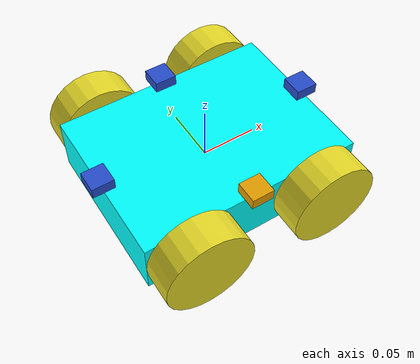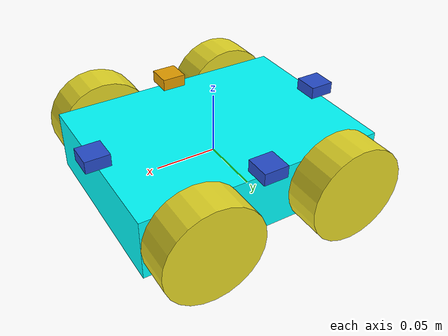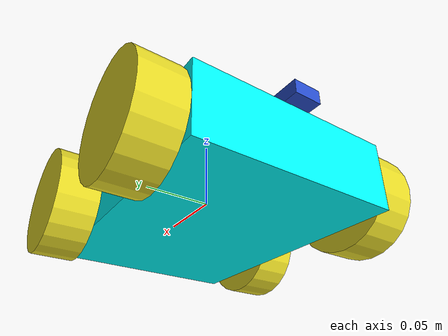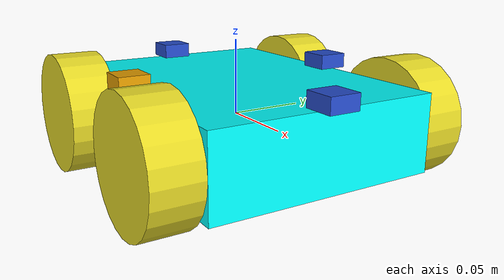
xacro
<?xml version='1.0'?>

<robot name="robot" xmlns:xacro="http://www.ros.org/wiki/xacro">

  <xacro:property name="camera_width" value="0.02"/>
  <xacro:property name="camera_length" value="0.02"/>
  <xacro:property name="camera_height" value="0.01"/>
  <xacro:property name="camera_mass" value="0.01"/>
  <xacro:property name="chassis_width" value="0.15"/>
  <xacro:property name="chassis_length" value="0.2"/>
  <xacro:property name="chassis_height" value="0.05"/>
  <xacro:property name="chassis_mass" value="0.5"/>
  <xacro:property name="wheel_radius" value="0.04"/>
  <xacro:property name="wheel_width" value="0.03"/>
  <xacro:property name="wheel_mass" value="0.025"/>

  <xacro:include filename="$(find robbie)/urdf/macros.xacro"/>
  <xacro:include filename="$(find robbie)/urdf/materials.xacro"/>

  <link name='chassis'>
    <xacro:box_inertial name="chassis" m="${chassis_mass}" x="${chassis_length}" y="${chassis_width}" z="${chassis_height}"/>
    <collision name='chassis_collision'>
      <geometry>
        <box size="${chassis_length} ${chassis_width} ${chassis_height}"/>
      </geometry>
    </collision>
    <visual name='chassis_visual'>
      <origin xyz="0 0 0" rpy=" 0 0 0"/>
      <geometry>
        <box size="${chassis_length} ${chassis_width} ${chassis_height}"/>
      </geometry>
      <material name="Cyan">
        <color rgba="0 1.0 1.0 1.0"/>
      </material>
    </visual>
  </link>

  <link name='wheel_FR'>
    <xacro:cylinder_inertial name="wheel_FR" m="${wheel_mass}" r="${wheel_radius}" h="${wheel_width}"/>
    <collision name='wheel_FR_collision'>
      <origin xyz="0 0 0" rpy="1.5708 0 0"/>
      <geometry>
        <cylinder radius="${wheel_radius}" length="${wheel_width}"/>
      </geometry>
    </collision>
    <visual name='wheel_FR_visual'>
      <origin xyz="0 0 0" rpy="1.5708 0 0"/>
      <geometry>
        <cylinder radius="${wheel_radius}" length="${wheel_width}"/>
      </geometry>
    </visual>
  </link>

  <link name='wheel_FL'>
    <xacro:cylinder_inertial name="wheel_FL" m="${wheel_mass}" r="${wheel_radius}" h="${wheel_width}"/>
    <collision name='wheel_FL_collision'>
      <origin xyz="0 0 0" rpy="1.5708 0 0"/>
      <geometry>
        <cylinder radius="${wheel_radius}" length="${wheel_width}"/>
      </geometry>
    </collision>
    <visual name='wheel_FL_visual'>
      <origin xyz="0 0 0" rpy="1.5708 0 0"/>
      <geometry>
        <cylinder radius="${wheel_radius}" length="${wheel_width}"/>
      </geometry>
    </visual>
  </link>

  <link name='wheel_RR'>
    <xacro:cylinder_inertial name="wheel_RR" m="${wheel_mass}" r="${wheel_radius}" h="${wheel_width}"/>
    <collision name='wheel_RR_collision'>
      <origin xyz="0 0 0" rpy="1.5708 0 0"/>
      <geometry>
        <cylinder radius="${wheel_radius}" length="${wheel_width}"/>
      </geometry>
    </collision>
    <visual name='wheel_RR_visual'>
      <origin xyz="0 0 0" rpy="1.5708 0 0"/>
      <geometry>
        <cylinder radius="${wheel_radius}" length="${wheel_width}"/>
      </geometry>
    </visual>
  </link>

  <link name='wheel_RL'>
    <xacro:cylinder_inertial name="wheel_RL" m="${wheel_mass}" r="${wheel_radius}" h="${wheel_width}"/>
    <collision name='wheel_RL_collision'>
      <origin xyz="0 0 0" rpy="1.5708 0 0"/>
      <geometry>
        <cylinder radius="${wheel_radius}" length="${wheel_width}"/>
      </geometry>
    </collision>
    <visual name='wheel_RL_visual'>
      <origin xyz="0 0 0" rpy="1.5708 0 0"/>
      <geometry>
        <cylinder radius="${wheel_radius}" length="${wheel_width}"/>
      </geometry>
    </visual>
  </link>

  <link name='camera_front_link'>
    <xacro:box_inertial name="camera_link_front" m="${camera_mass}" x="${camera_width}" y="${camera_length}" z="${camera_height}"/>
    <collision name='camera_link_front__collision'>
      <geometry>
        <box size="${camera_length} ${camera_width} ${camera_height}"/>
      </geometry>
    </collision>
    <visual name='camera_link_front_visual'>
      <origin xyz="0 0 0" rpy=" 0 0 0"/>
      <geometry>
        <box size="${camera_length} ${camera_width} ${camera_height}"/>
      </geometry>
    </visual>
  </link>

  <link name='camera_rear_link'>
    <xacro:box_inertial name="camera_link_rear" m="${camera_mass}" x="${camera_width}" y="${camera_length}" z="${camera_height}"/>
    <collision name='camera_link_rear_collision'>
      <geometry>
        <box size="${camera_length} ${camera_width} ${camera_height}"/>
      </geometry>
    </collision>
    <visual name='camera_link_rear_visual'>
      <origin xyz="0 0 0" rpy=" 0 0 0"/>
      <geometry>
        <box size="${camera_length} ${camera_width} ${camera_height}"/>
      </geometry>
    </visual>
  </link>

  <link name='camera_left_link'>
    <xacro:box_inertial name="camera_link_left" m="${camera_mass}" x="${camera_width}" y="${camera_length}" z="${camera_height}"/>
    <collision name='camera_link_left_collision'>
      <geometry>
        <box size="${camera_length} ${camera_width} ${camera_height}"/>
      </geometry>
    </collision>
    <visual name='camera_link_left_visual'>
      <origin xyz="0 0 0" rpy=" 0 0 0"/>
      <geometry>
        <box size="${camera_length} ${camera_width} ${camera_height}"/>
      </geometry>
    </visual>
  </link>

  <link name='camera_right_link'>
    <xacro:box_inertial name="camera_link_right" m="${camera_mass}" x="${camera_width}" y="${camera_length}" z="${camera_height}"/>
    <collision name='camera_right_collision'>
      <geometry>
        <box size="${camera_length} ${camera_width} ${camera_height}"/>
      </geometry>
    </collision>
    <visual name='camera_right_visual'>
      <origin xyz="0 0 0" rpy=" 0 0 0"/>
      <geometry>
        <box size="${camera_length} ${camera_width} ${camera_height}"/>
      </geometry>
    </visual>
  </link>

  <joint name="wheel_FR_joint" type="continuous">
    <parent link="chassis"/>
    <child link="wheel_FR"/>
    <origin xyz="${chassis_length/2-wheel_radius} -${chassis_width/2+wheel_width/2} 0"
            rpy="0 0 0"/>
    <axis xyz="0 1 0"/>
  </joint>

  <joint name="wheel_FL_joint" type="continuous">
    <parent link="chassis"/>
    <child link="wheel_FL"/>
    <origin xyz="${chassis_length/2-wheel_radius} ${chassis_width/2+wheel_width/2} 0"
            rpy="0 0 0"/>
    <axis xyz="0 1 0"/>
  </joint>

  <joint name="wheel_RR_joint" type="continuous">
    <parent link="chassis"/>
    <child link="wheel_RR"/>
    <origin xyz="-${chassis_length/2-wheel_radius} -${chassis_width/2+wheel_width/2} 0"
            rpy="0 0 0"/>
    <axis xyz="0 1 0"/>
  </joint>

  <joint name="wheel_RL_joint" type="continuous">
    <parent link="chassis"/>
    <child link="wheel_RL"/>
    <origin xyz="-${chassis_length/2-wheel_radius} ${chassis_width/2+wheel_width/2} 0"
            rpy="0 0 0"/>
    <axis xyz="0 1 0"/>
  </joint>

  <joint name="camera_front_joint" type="fixed">
    <parent link="chassis"/>
    <child link="camera_front_link"/>
    <origin xyz="${chassis_length/2} 0 ${chassis_height/2+camera_height/2}" rpy="0 0 0 "/>
  </joint>

  <joint name="camera_rear_joint" type="fixed">
    <parent link="chassis"/>
    <child link="camera_rear_link"/>
    <origin xyz="-${chassis_length/2} 0 ${chassis_height/2+camera_height/2}" rpy="0 0 3.14159"/>
  </joint>

  <joint name="camera_left_joint" type="fixed">
    <parent link="chassis"/>
    <child link="camera_left_link"/>
    <origin xyz="0 ${chassis_width/2} ${chassis_height/2+camera_height/2}" rpy="0 0 1.5708" />
  </joint>

  <joint name="camera_right_joint" type="fixed">
    <parent link="chassis"/>
    <child link="camera_right_link"/>
    <origin xyz="0 -${chassis_width/2} ${chassis_height/2+camera_height/2}" rpy="0 0 -1.5708"/>
  </joint>

  <gazebo reference="chassis">
    <material>Gazebo/Orange</material>
  </gazebo>

  <gazebo reference="camera_front_link">
    <material>Gazebo/Blue</material>
  </gazebo>

  <gazebo reference="camera_rear_link">
    <material>Gazebo/Blue</material>
  </gazebo>

  <gazebo reference="camera_left_link">
    <material>Gazebo/Blue</material>
  </gazebo>

  <gazebo reference="camera_rear_link">
    <material>Gazebo/Blue</material>
  </gazebo>

  <gazebo reference="wheel_FL">
    <material>Gazebo/Yellow</material>
  </gazebo>

  <gazebo reference="wheel_FR">
    <material>Gazebo/Yellow</material>
  </gazebo>

  <gazebo reference="wheel_RL">
    <material>Gazebo/Yellow</material>
  </gazebo>

  <gazebo reference="wheel_RR">
    <material>Gazebo/Yellow</material>
  </gazebo>

  <gazebo>
    <plugin name="skid_steer_drive_controller" filename="libgazebo_ros_skid_steer_drive.so">
      <updateRate>100.0</updateRate>
      <leftFrontJoint>wheel_FL_joint</leftFrontJoint>
      <rightFrontJoint>wheel_FR_joint</rightFrontJoint>
      <leftRearJoint>wheel_RL_joint</leftRearJoint>
      <rightRearJoint>wheel_RR_joint</rightRearJoint>
      <wheelSeparation>0.4</wheelSeparation>
      <wheelDiameter>0.215</wheelDiameter>
      <robotBaseFrame>base_link</robotBaseFrame>
      <torque>20</torque>
      <topicName>cmd_vel</topicName>
      <broadcastTF>false</broadcastTF>
    </plugin>
  </gazebo>

  <gazebo reference="camera_front_link">
    <sensor type="camera" name="cameraFront">
      <update_rate>30.0</update_rate>
      <camera name="head">
        <horizontal_fov>1.3962634</horizontal_fov>
        <image>
          <width>1400</width>
          <height>1400</height>
          <format>R8G8B8</format>
        </image>
        <clip>
          <near>0.02</near>
          <far>300</far>
        </clip>
        <noise>
          <type>gaussian</type>
          <!-- Noise is sampled independently per pixel on each frame.
              That pixel's noise value is added to each of its color
              channels, which at that point lie in the range [0,1]. -->
          <mean>0.0</mean>
          <stddev>0.007</stddev>
        </noise>
      </camera>
      <plugin name="camera_controller" filename="libgazebo_ros_camera.so">
        <alwaysOn>true</alwaysOn>
        <updateRate>0.0</updateRate>
        <cameraName>rrbot/cameraFront</cameraName>
        <imageTopicName>image_raw_front</imageTopicName>
        <cameraInfoTopicName>camera_info_front</cameraInfoTopicName>
        <frameName>camera_front_link</frameName>
        <hackBaseline>0.07</hackBaseline>
        <distortionK1>0.0</distortionK1>
        <distortionK2>0.0</distortionK2>
        <distortionK3>0.0</distortionK3>
        <distortionT1>0.0</distortionT1>
        <distortionT2>0.0</distortionT2>
      </plugin>
    </sensor>
  </gazebo>

  <gazebo reference="camera_rear_link">
    <sensor type="camera" name="cameraRear">
      <update_rate>30.0</update_rate>
      <camera name="head">
        <horizontal_fov>1.3962634</horizontal_fov>
        <image>
          <width>1400</width>
          <height>1400</height>
          <format>R8G8B8</format>
        </image>
        <clip>
          <near>0.02</near>
          <far>300</far>
        </clip>
        <noise>
          <type>gaussian</type>
          <!-- Noise is sampled independently per pixel on each frame.
              That pixel's noise value is added to each of its color
              channels, which at that point lie in the range [0,1]. -->
          <mean>0.0</mean>
          <stddev>0.007</stddev>
        </noise>
      </camera>
      <plugin name="camera_controller" filename="libgazebo_ros_camera.so">
        <alwaysOn>true</alwaysOn>
        <updateRate>0.0</updateRate>
        <cameraName>rrbot/cameraRear</cameraName>
        <imageTopicName>image_raw_rear</imageTopicName>
        <cameraInfoTopicName>camera_info_rear</cameraInfoTopicName>
        <frameName>camera_rear_link</frameName>
        <hackBaseline>0.07</hackBaseline>
        <distortionK1>0.0</distortionK1>
        <distortionK2>0.0</distortionK2>
        <distortionK3>0.0</distortionK3>
        <distortionT1>0.0</distortionT1>
        <distortionT2>0.0</distortionT2>
      </plugin>
    </sensor>
  </gazebo>

  <gazebo reference="camera_left_link">
    <sensor type="camera" name="cameraLeft">
      <update_rate>30.0</update_rate>
      <camera name="head">
        <horizontal_fov>0.3</horizontal_fov>
        <image>
          <width>1400</width>
          <height>1400</height>
          <format>R8G8B8</format>
        </image>
        <clip>
          <near>0.02</near>
          <far>300</far>
        </clip>
        <noise>
          <type>gaussian</type>
          <!-- Noise is sampled independently per pixel on each frame.
              That pixel's noise value is added to each of its color
              channels, which at that point lie in the range [0,1]. -->
          <mean>0.0</mean>
          <stddev>0.007</stddev>
        </noise>
      </camera>
      <plugin name="camera_controller" filename="libgazebo_ros_camera.so">
        <alwaysOn>true</alwaysOn>
        <updateRate>0.0</updateRate>
        <cameraName>rrbot/cameraLeft</cameraName>
        <imageTopicName>image_raw_left</imageTopicName>
        <cameraInfoTopicName>camera_info_left</cameraInfoTopicName>
        <frameName>camera_left_link</frameName>
        <hackBaseline>0.07</hackBaseline>
        <distortionK1>0.0</distortionK1>
        <distortionK2>0.0</distortionK2>
        <distortionK3>0.0</distortionK3>
        <distortionT1>0.0</distortionT1>
        <distortionT2>0.0</distortionT2>
      </plugin>
    </sensor>
  </gazebo>

  <gazebo reference="camera_right_link">
    <sensor type="camera" name="cameraRight">
      <update_rate>30.0</update_rate>
      <camera name="head">
        <horizontal_fov>0.8</horizontal_fov>
        <image>
          <width>1400</width>
          <height>1400</height>
          <format>R8G8B8</format>
        </image>
        <clip>
          <near>0.02</near>
          <far>300</far>
        </clip>
        <noise>
          <type>gaussian</type>
          <!-- Noise is sampled independently per pixel on each frame.
              That pixel's noise value is added to each of its color
              channels, which at that point lie in the range [0,1]. -->
          <mean>0.0</mean>
          <stddev>0.007</stddev>
        </noise>
      </camera>
      <plugin name="camera_controller" filename="libgazebo_ros_camera.so">
        <alwaysOn>true</alwaysOn>
        <updateRate>0.0</updateRate>
        <cameraName>rrbot/cameraRight</cameraName>
        <imageTopicName>image_raw_right</imageTopicName>
        <cameraInfoTopicName>camera_info_right</cameraInfoTopicName>
        <frameName>camera_right_link</frameName>
        <hackBaseline>0.07</hackBaseline>
        <distortionK1>0.0</distortionK1>
        <distortionK2>0.0</distortionK2>
        <distortionK3>0.0</distortionK3>
        <distortionT1>0.0</distortionT1>
        <distortionT2>0.0</distortionT2>
      </plugin>
    </sensor>
  </gazebo>

</robot>
